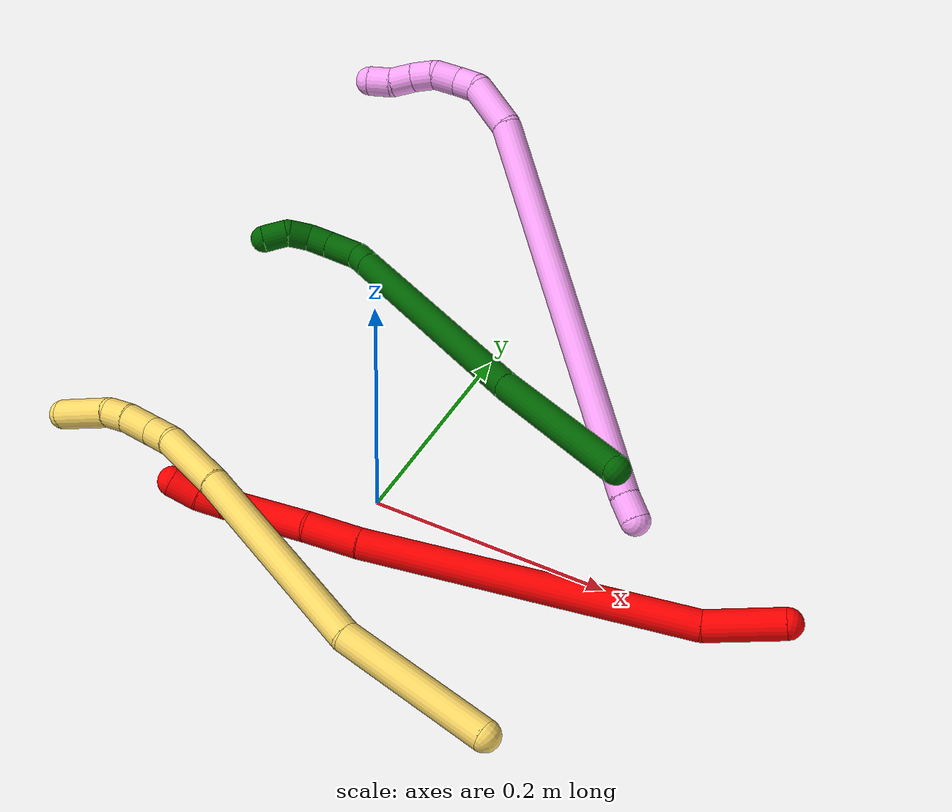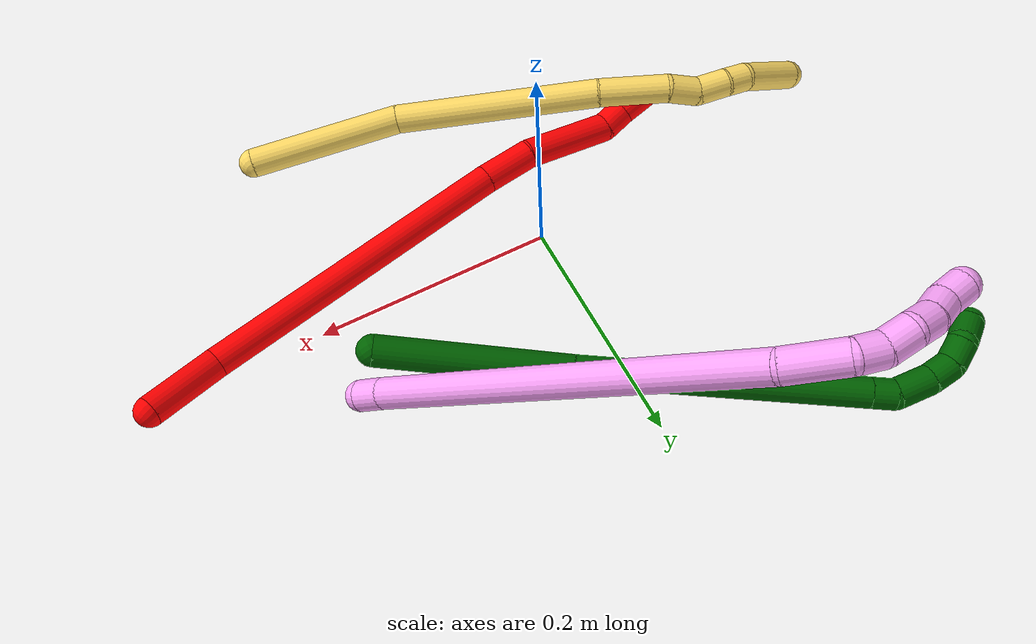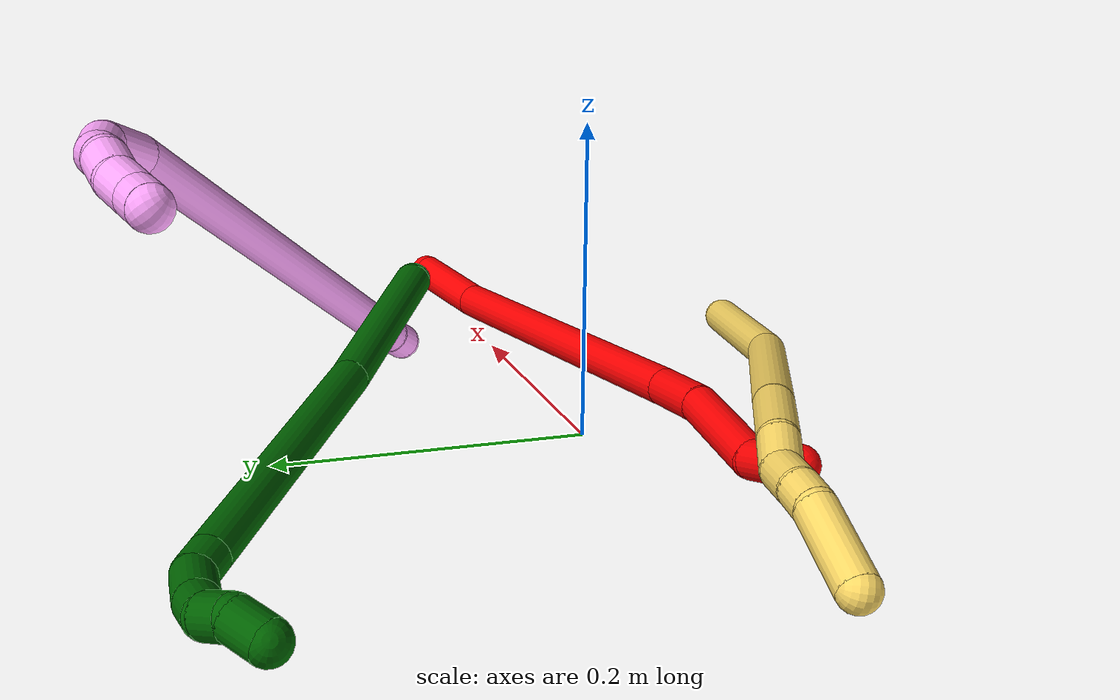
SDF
<sdf version="1.7">
 <world name="default">
  <model name="2">
   <static>0</static>
   <link name="2">
    <collision name="collision-cylinder-e_1_1_4">
     <pose>-0.010847 0.006863 -0.028928 -2.90867 -0.349832 1.97205</pose>
     <geometry><cylinder><radius>0.0125</radius><length>0.063295</length></cylinder></geometry>
     <surface>
      <friction><ode><mu>1.16</mu><mu2>1.16</mu2><slip1>0</slip1><slip2>0</slip2></ode></friction>
      <contact><ode><kp>1e+06</kp><kd>1</kd><max_vel>0</max_vel><min_depth>0.001</min_depth></ode></contact>
     </surface>
    </collision>
    <visual name="visual-cylinder-e_1_1_4">
     <pose>-0.010847 0.006863 -0.028928 -2.90867 -0.349832 1.97205</pose>
     <geometry><cylinder><radius>0.0125</radius><length>0.063295</length></cylinder></geometry>
     <material><ambient>1 0 0 1</ambient></material>
    </visual>
    <collision name="collision-cylinder-e_2_4_5">
     <pose>-0.054925 0.010246 -0.188528 3.11497 -0.248945 -2.92964</pose>
     <geometry><cylinder><radius>0.0125</radius><length>0.269755</length></cylinder></geometry>
     <surface>
      <friction><ode><mu>1.16</mu><mu2>1.16</mu2><slip1>0</slip1><slip2>0</slip2></ode></friction>
      <contact><ode><kp>1e+06</kp><kd>1</kd><max_vel>0</max_vel><min_depth>0.001</min_depth></ode></contact>
     </surface>
    </collision>
    <visual name="visual-cylinder-e_2_4_5">
     <pose>-0.054925 0.010246 -0.188528 3.11497 -0.248945 -2.92964</pose>
     <geometry><cylinder><radius>0.0125</radius><length>0.269755</length></cylinder></geometry>
     <material><ambient>1 0 0 1</ambient></material>
    </visual>
    <collision name="collision-cylinder-e_3_5_6">
     <pose>-0.094009 0.004577 -0.340396 3.03862 -0.268089 -2.41155</pose>
     <geometry><cylinder><radius>0.0125</radius><length>0.044193</length></cylinder></geometry>
     <surface>
      <friction><ode><mu>1.16</mu><mu2>1.16</mu2><slip1>0</slip1><slip2>0</slip2></ode></friction>
      <contact><ode><kp>1e+06</kp><kd>1</kd><max_vel>0</max_vel><min_depth>0.001</min_depth></ode></contact>
     </surface>
    </collision>
    <visual name="visual-cylinder-e_3_5_6">
     <pose>-0.094009 0.004577 -0.340396 3.03862 -0.268089 -2.41155</pose>
     <geometry><cylinder><radius>0.0125</radius><length>0.044193</length></cylinder></geometry>
     <material><ambient>1 0 0 1</ambient></material>
    </visual>
    <collision name="collision-cylinder-e_4_6_7">
     <pose>-0.117105 -0.002173 -0.395254 3.00696 -0.469691 -2.59228</pose>
     <geometry><cylinder><radius>0.0125</radius><length>0.076193</length></cylinder></geometry>
     <surface>
      <friction><ode><mu>1.16</mu><mu2>1.16</mu2><slip1>0</slip1><slip2>0</slip2></ode></friction>
      <contact><ode><kp>1e+06</kp><kd>1</kd><max_vel>0</max_vel><min_depth>0.001</min_depth></ode></contact>
     </surface>
    </collision>
    <visual name="visual-cylinder-e_4_6_7">
     <pose>-0.117105 -0.002173 -0.395254 3.00696 -0.469691 -2.59228</pose>
     <geometry><cylinder><radius>0.0125</radius><length>0.076193</length></cylinder></geometry>
     <material><ambient>1 0 0 1</ambient></material>
    </visual>
    <collision name="collision-cylinder-e_5_7_8">
     <pose>-0.135219 -0.007335 -0.440179 3.08821 -0.077015 -1.92954</pose>
     <geometry><cylinder><radius>0.0125</radius><length>0.022622</length></cylinder></geometry>
     <surface>
      <friction><ode><mu>1.16</mu><mu2>1.16</mu2><slip1>0</slip1><slip2>0</slip2></ode></friction>
      <contact><ode><kp>1e+06</kp><kd>1</kd><max_vel>0</max_vel><min_depth>0.001</min_depth></ode></contact>
     </surface>
    </collision>
    <visual name="visual-cylinder-e_5_7_8">
     <pose>-0.135219 -0.007335 -0.440179 3.08821 -0.077015 -1.92954</pose>
     <geometry><cylinder><radius>0.0125</radius><length>0.022622</length></cylinder></geometry>
     <material><ambient>1 0 0 1</ambient></material>
    </visual>
    <collision name="collision-cylinder-e_6_8_2">
     <pose>-0.136548 -0.010688 -0.463082 2.90951 -0.038347 -0.326091</pose>
     <geometry><cylinder><radius>0.0125</radius><length>0.023942</length></cylinder></geometry>
     <surface>
      <friction><ode><mu>1.16</mu><mu2>1.16</mu2><slip1>0</slip1><slip2>0</slip2></ode></friction>
      <contact><ode><kp>1e+06</kp><kd>1</kd><max_vel>0</max_vel><min_depth>0.001</min_depth></ode></contact>
     </surface>
    </collision>
    <visual name="visual-cylinder-e_6_8_2">
     <pose>-0.136548 -0.010688 -0.463082 2.90951 -0.038347 -0.326091</pose>
     <geometry><cylinder><radius>0.0125</radius><length>0.023942</length></cylinder></geometry>
     <material><ambient>1 0 0 1</ambient></material>
    </visual>
    <collision name="collision-sphere-2">
     <pose>-0.137007 -0.013439 -0.474724 0 -0 0</pose>
     <geometry><sphere><radius>0.0125</radius></sphere></geometry>
     <surface>
      <friction><ode><mu>1.16</mu><mu2>1.16</mu2><slip1>0</slip1><slip2>0</slip2></ode></friction>
      <contact><ode><kp>1e+06</kp><kd>1</kd><max_vel>0</max_vel><min_depth>0.001</min_depth></ode></contact>
     </surface>
    </collision>
    <visual name="visual-sphere-2">
     <pose>-0.137007 -0.013439 -0.474724 0 -0 0</pose>
     <geometry><sphere><radius>0.0125</radius></sphere></geometry>
     <material><ambient>1 0 0 1</ambient></material>
    </visual>
    <collision name="collision-sphere-4">
     <pose>-0.021694 0.013725 -0.057855 0 -0 0</pose>
     <geometry><sphere><radius>0.0125</radius></sphere></geometry>
     <surface>
      <friction><ode><mu>1.16</mu><mu2>1.16</mu2><slip1>0</slip1><slip2>0</slip2></ode></friction>
      <contact><ode><kp>1e+06</kp><kd>1</kd><max_vel>0</max_vel><min_depth>0.001</min_depth></ode></contact>
     </surface>
    </collision>
    <visual name="visual-sphere-4">
     <pose>-0.021694 0.013725 -0.057855 0 -0 0</pose>
     <geometry><sphere><radius>0.0125</radius></sphere></geometry>
     <material><ambient>1 0 0 1</ambient></material>
    </visual>
    <collision name="collision-sphere-1">
     <geometry><sphere><radius>0.0125</radius></sphere></geometry>
     <surface>
      <friction><ode><mu>1.16</mu><mu2>1.16</mu2><slip1>0</slip1><slip2>0</slip2></ode></friction>
      <contact><ode><kp>1e+06</kp><kd>1</kd><max_vel>0</max_vel><min_depth>0.001</min_depth></ode></contact>
     </surface>
    </collision>
    <visual name="visual-sphere-1">
     <geometry><sphere><radius>0.0125</radius></sphere></geometry>
     <material><ambient>1 0 0 1</ambient></material>
    </visual>
    <collision name="collision-sphere-8">
     <pose>-0.136089 -0.007937 -0.451441 0 -0 0</pose>
     <geometry><sphere><radius>0.0125</radius></sphere></geometry>
     <surface>
      <friction><ode><mu>1.16</mu><mu2>1.16</mu2><slip1>0</slip1><slip2>0</slip2></ode></friction>
      <contact><ode><kp>1e+06</kp><kd>1</kd><max_vel>0</max_vel><min_depth>0.001</min_depth></ode></contact>
     </surface>
    </collision>
    <visual name="visual-sphere-8">
     <pose>-0.136089 -0.007937 -0.451441 0 -0 0</pose>
     <geometry><sphere><radius>0.0125</radius></sphere></geometry>
     <material><ambient>1 0 0 1</ambient></material>
    </visual>
    <collision name="collision-sphere-5">
     <pose>-0.088156 0.006767 -0.319202 0 -0 0</pose>
     <geometry><sphere><radius>0.0125</radius></sphere></geometry>
     <surface>
      <friction><ode><mu>1.16</mu><mu2>1.16</mu2><slip1>0</slip1><slip2>0</slip2></ode></friction>
      <contact><ode><kp>1e+06</kp><kd>1</kd><max_vel>0</max_vel><min_depth>0.001</min_depth></ode></contact>
     </surface>
    </collision>
    <visual name="visual-sphere-5">
     <pose>-0.088156 0.006767 -0.319202 0 -0 0</pose>
     <geometry><sphere><radius>0.0125</radius></sphere></geometry>
     <material><ambient>1 0 0 1</ambient></material>
    </visual>
    <collision name="collision-sphere-6">
     <pose>-0.099863 0.002386 -0.36159 0 -0 0</pose>
     <geometry><sphere><radius>0.0125</radius></sphere></geometry>
     <surface>
      <friction><ode><mu>1.16</mu><mu2>1.16</mu2><slip1>0</slip1><slip2>0</slip2></ode></friction>
      <contact><ode><kp>1e+06</kp><kd>1</kd><max_vel>0</max_vel><min_depth>0.001</min_depth></ode></contact>
     </surface>
    </collision>
    <visual name="visual-sphere-6">
     <pose>-0.099863 0.002386 -0.36159 0 -0 0</pose>
     <geometry><sphere><radius>0.0125</radius></sphere></geometry>
     <material><ambient>1 0 0 1</ambient></material>
    </visual>
    <collision name="collision-sphere-7">
     <pose>-0.134348 -0.006733 -0.428918 0 -0 0</pose>
     <geometry><sphere><radius>0.0125</radius></sphere></geometry>
     <surface>
      <friction><ode><mu>1.16</mu><mu2>1.16</mu2><slip1>0</slip1><slip2>0</slip2></ode></friction>
      <contact><ode><kp>1e+06</kp><kd>1</kd><max_vel>0</max_vel><min_depth>0.001</min_depth></ode></contact>
     </surface>
    </collision>
    <visual name="visual-sphere-7">
     <pose>-0.134348 -0.006733 -0.428918 0 -0 0</pose>
     <geometry><sphere><radius>0.0125</radius></sphere></geometry>
     <material><ambient>1 0 0 1</ambient></material>
    </visual>
    <inertial>
     <pose>-0.069816 0.005626 -0.237782 0 -0 0</pose>
     <mass>0.5</mass>
     <inertia>
      <ixx>-0.001957</ixx>
      <ixy>0</ixy>
      <ixz>0</ixz>
      <iyy>0.001319</iyy>
      <iyz>0</iyz>
      <izz>0.000441</izz>
     </inertia>
    </inertial>
   </link>
   <pose>0.342022 0.01339 0.023901 -2.02963 -1.01857 -0.82615</pose>
  </model>
  <model name="4">
   <static>0</static>
   <link name="4">
    <collision name="collision-cylinder-e_1_1_4">
     <pose>-0.010145 0.004183 -0.001202 -1.85056 -1.16559 1.43791</pose>
     <geometry><cylinder><radius>0.0125</radius><length>0.022079</length></cylinder></geometry>
     <surface>
      <friction><ode><mu>1.16</mu><mu2>1.16</mu2><slip1>0</slip1><slip2>0</slip2></ode></friction>
      <contact><ode><kp>1e+06</kp><kd>1</kd><max_vel>0</max_vel><min_depth>0.001</min_depth></ode></contact>
     </surface>
    </collision>
    <visual name="visual-cylinder-e_1_1_4">
     <pose>-0.010145 0.004183 -0.001202 -1.85056 -1.16559 1.43791</pose>
     <geometry><cylinder><radius>0.0125</radius><length>0.022079</length></cylinder></geometry>
     <material><ambient>1 0.65098 0.996078 1</ambient></material>
    </visual>
    <collision name="collision-cylinder-e_2_4_5">
     <pose>-0.178156 0.053418 -0.017954 -1.90316 -1.27759 1.61193</pose>
     <geometry><cylinder><radius>0.0125</radius><length>0.329805</length></cylinder></geometry>
     <surface>
      <friction><ode><mu>1.16</mu><mu2>1.16</mu2><slip1>0</slip1><slip2>0</slip2></ode></friction>
      <contact><ode><kp>1e+06</kp><kd>1</kd><max_vel>0</max_vel><min_depth>0.001</min_depth></ode></contact>
     </surface>
    </collision>
    <visual name="visual-cylinder-e_2_4_5">
     <pose>-0.178156 0.053418 -0.017954 -1.90316 -1.27759 1.61193</pose>
     <geometry><cylinder><radius>0.0125</radius><length>0.329805</length></cylinder></geometry>
     <material><ambient>1 0.65098 0.996078 1</ambient></material>
    </visual>
    <collision name="collision-cylinder-e_3_5_6">
     <pose>-0.354582 0.11132 -0.036057 -1.76693 -0.956195 1.12621</pose>
     <geometry><cylinder><radius>0.0125</radius><length>0.045438</length></cylinder></geometry>
     <surface>
      <friction><ode><mu>1.16</mu><mu2>1.16</mu2><slip1>0</slip1><slip2>0</slip2></ode></friction>
      <contact><ode><kp>1e+06</kp><kd>1</kd><max_vel>0</max_vel><min_depth>0.001</min_depth></ode></contact>
     </surface>
    </collision>
    <visual name="visual-cylinder-e_3_5_6">
     <pose>-0.354582 0.11132 -0.036057 -1.76693 -0.956195 1.12621</pose>
     <geometry><cylinder><radius>0.0125</radius><length>0.045438</length></cylinder></geometry>
     <material><ambient>1 0.65098 0.996078 1</ambient></material>
    </visual>
    <collision name="collision-cylinder-e_4_6_7">
     <pose>-0.37748 0.133149 -0.039771 -1.69931 -0.446713 0.505718</pose>
     <geometry><cylinder><radius>0.0125</radius><length>0.020078</length></cylinder></geometry>
     <surface>
      <friction><ode><mu>1.16</mu><mu2>1.16</mu2><slip1>0</slip1><slip2>0</slip2></ode></friction>
      <contact><ode><kp>1e+06</kp><kd>1</kd><max_vel>0</max_vel><min_depth>0.001</min_depth></ode></contact>
     </surface>
    </collision>
    <visual name="visual-cylinder-e_4_6_7">
     <pose>-0.37748 0.133149 -0.039771 -1.69931 -0.446713 0.505718</pose>
     <geometry><cylinder><radius>0.0125</radius><length>0.020078</length></cylinder></geometry>
     <material><ambient>1 0.65098 0.996078 1</ambient></material>
    </visual>
    <collision name="collision-cylinder-e_5_7_8">
     <pose>-0.385769 0.151391 -0.045627 -2.04 -0.363567 0.581575</pose>
     <geometry><cylinder><radius>0.0125</radius><length>0.022223</length></cylinder></geometry>
     <surface>
      <friction><ode><mu>1.16</mu><mu2>1.16</mu2><slip1>0</slip1><slip2>0</slip2></ode></friction>
      <contact><ode><kp>1e+06</kp><kd>1</kd><max_vel>0</max_vel><min_depth>0.001</min_depth></ode></contact>
     </surface>
    </collision>
    <visual name="visual-cylinder-e_5_7_8">
     <pose>-0.385769 0.151391 -0.045627 -2.04 -0.363567 0.581575</pose>
     <geometry><cylinder><radius>0.0125</radius><length>0.022223</length></cylinder></geometry>
     <material><ambient>1 0.65098 0.996078 1</ambient></material>
    </visual>
    <collision name="collision-cylinder-e_6_8_9">
     <pose>-0.389985 0.170501 -0.052778 -1.81509 -0.026093 0.033395</pose>
     <geometry><cylinder><radius>0.0125</radius><length>0.020304</length></cylinder></geometry>
     <surface>
      <friction><ode><mu>1.16</mu><mu2>1.16</mu2><slip1>0</slip1><slip2>0</slip2></ode></friction>
      <contact><ode><kp>1e+06</kp><kd>1</kd><max_vel>0</max_vel><min_depth>0.001</min_depth></ode></contact>
     </surface>
    </collision>
    <visual name="visual-cylinder-e_6_8_9">
     <pose>-0.389985 0.170501 -0.052778 -1.81509 -0.026093 0.033395</pose>
     <geometry><cylinder><radius>0.0125</radius><length>0.020304</length></cylinder></geometry>
     <material><ambient>1 0.65098 0.996078 1</ambient></material>
    </visual>
    <collision name="collision-cylinder-e_7_9_10">
     <pose>-0.38877 0.189435 -0.059214 -1.98375 0.148071 -0.225984</pose>
     <geometry><cylinder><radius>0.0125</radius><length>0.020062</length></cylinder></geometry>
     <surface>
      <friction><ode><mu>1.16</mu><mu2>1.16</mu2><slip1>0</slip1><slip2>0</slip2></ode></friction>
      <contact><ode><kp>1e+06</kp><kd>1</kd><max_vel>0</max_vel><min_depth>0.001</min_depth></ode></contact>
     </surface>
    </collision>
    <visual name="visual-cylinder-e_7_9_10">
     <pose>-0.38877 0.189435 -0.059214 -1.98375 0.148071 -0.225984</pose>
     <geometry><cylinder><radius>0.0125</radius><length>0.020062</length></cylinder></geometry>
     <material><ambient>1 0.65098 0.996078 1</ambient></material>
    </visual>
    <collision name="collision-cylinder-e_8_10_2">
     <pose>-0.38887 0.207492 -0.067338 -2.00345 -0.158606 0.247208</pose>
     <geometry><cylinder><radius>0.0125</radius><length>0.020011</length></cylinder></geometry>
     <surface>
      <friction><ode><mu>1.16</mu><mu2>1.16</mu2><slip1>0</slip1><slip2>0</slip2></ode></friction>
      <contact><ode><kp>1e+06</kp><kd>1</kd><max_vel>0</max_vel><min_depth>0.001</min_depth></ode></contact>
     </surface>
    </collision>
    <visual name="visual-cylinder-e_8_10_2">
     <pose>-0.38887 0.207492 -0.067338 -2.00345 -0.158606 0.247208</pose>
     <geometry><cylinder><radius>0.0125</radius><length>0.020011</length></cylinder></geometry>
     <material><ambient>1 0.65098 0.996078 1</ambient></material>
    </visual>
    <collision name="collision-sphere-2">
     <pose>-0.390451 0.216462 -0.07148 0 -0 0</pose>
     <geometry><sphere><radius>0.0125</radius></sphere></geometry>
     <surface>
      <friction><ode><mu>1.16</mu><mu2>1.16</mu2><slip1>0</slip1><slip2>0</slip2></ode></friction>
      <contact><ode><kp>1e+06</kp><kd>1</kd><max_vel>0</max_vel><min_depth>0.001</min_depth></ode></contact>
     </surface>
    </collision>
    <visual name="visual-sphere-2">
     <pose>-0.390451 0.216462 -0.07148 0 -0 0</pose>
     <geometry><sphere><radius>0.0125</radius></sphere></geometry>
     <material><ambient>1 0.65098 0.996078 1</ambient></material>
    </visual>
    <collision name="collision-sphere-10">
     <pose>-0.38729 0.198522 -0.063195 0 -0 0</pose>
     <geometry><sphere><radius>0.0125</radius></sphere></geometry>
     <surface>
      <friction><ode><mu>1.16</mu><mu2>1.16</mu2><slip1>0</slip1><slip2>0</slip2></ode></friction>
      <contact><ode><kp>1e+06</kp><kd>1</kd><max_vel>0</max_vel><min_depth>0.001</min_depth></ode></contact>
     </surface>
    </collision>
    <visual name="visual-sphere-10">
     <pose>-0.38729 0.198522 -0.063195 0 -0 0</pose>
     <geometry><sphere><radius>0.0125</radius></sphere></geometry>
     <material><ambient>1 0.65098 0.996078 1</ambient></material>
    </visual>
    <collision name="collision-sphere-9">
     <pose>-0.39025 0.180348 -0.055232 0 -0 0</pose>
     <geometry><sphere><radius>0.0125</radius></sphere></geometry>
     <surface>
      <friction><ode><mu>1.16</mu><mu2>1.16</mu2><slip1>0</slip1><slip2>0</slip2></ode></friction>
      <contact><ode><kp>1e+06</kp><kd>1</kd><max_vel>0</max_vel><min_depth>0.001</min_depth></ode></contact>
     </surface>
    </collision>
    <visual name="visual-sphere-9">
     <pose>-0.39025 0.180348 -0.055232 0 -0 0</pose>
     <geometry><sphere><radius>0.0125</radius></sphere></geometry>
     <material><ambient>1 0.65098 0.996078 1</ambient></material>
    </visual>
    <collision name="collision-sphere-4">
     <pose>-0.020291 0.008365 -0.002403 0 -0 0</pose>
     <geometry><sphere><radius>0.0125</radius></sphere></geometry>
     <surface>
      <friction><ode><mu>1.16</mu><mu2>1.16</mu2><slip1>0</slip1><slip2>0</slip2></ode></friction>
      <contact><ode><kp>1e+06</kp><kd>1</kd><max_vel>0</max_vel><min_depth>0.001</min_depth></ode></contact>
     </surface>
    </collision>
    <visual name="visual-sphere-4">
     <pose>-0.020291 0.008365 -0.002403 0 -0 0</pose>
     <geometry><sphere><radius>0.0125</radius></sphere></geometry>
     <material><ambient>1 0.65098 0.996078 1</ambient></material>
    </visual>
    <collision name="collision-sphere-1">
     <geometry><sphere><radius>0.0125</radius></sphere></geometry>
     <surface>
      <friction><ode><mu>1.16</mu><mu2>1.16</mu2><slip1>0</slip1><slip2>0</slip2></ode></friction>
      <contact><ode><kp>1e+06</kp><kd>1</kd><max_vel>0</max_vel><min_depth>0.001</min_depth></ode></contact>
     </surface>
    </collision>
    <visual name="visual-sphere-1">
     <geometry><sphere><radius>0.0125</radius></sphere></geometry>
     <material><ambient>1 0.65098 0.996078 1</ambient></material>
    </visual>
    <collision name="collision-sphere-8">
     <pose>-0.38972 0.160654 -0.050323 0 -0 0</pose>
     <geometry><sphere><radius>0.0125</radius></sphere></geometry>
     <surface>
      <friction><ode><mu>1.16</mu><mu2>1.16</mu2><slip1>0</slip1><slip2>0</slip2></ode></friction>
      <contact><ode><kp>1e+06</kp><kd>1</kd><max_vel>0</max_vel><min_depth>0.001</min_depth></ode></contact>
     </surface>
    </collision>
    <visual name="visual-sphere-8">
     <pose>-0.38972 0.160654 -0.050323 0 -0 0</pose>
     <geometry><sphere><radius>0.0125</radius></sphere></geometry>
     <material><ambient>1 0.65098 0.996078 1</ambient></material>
    </visual>
    <collision name="collision-sphere-5">
     <pose>-0.33602 0.098471 -0.033504 0 -0 0</pose>
     <geometry><sphere><radius>0.0125</radius></sphere></geometry>
     <surface>
      <friction><ode><mu>1.16</mu><mu2>1.16</mu2><slip1>0</slip1><slip2>0</slip2></ode></friction>
      <contact><ode><kp>1e+06</kp><kd>1</kd><max_vel>0</max_vel><min_depth>0.001</min_depth></ode></contact>
     </surface>
    </collision>
    <visual name="visual-sphere-5">
     <pose>-0.33602 0.098471 -0.033504 0 -0 0</pose>
     <geometry><sphere><radius>0.0125</radius></sphere></geometry>
     <material><ambient>1 0.65098 0.996078 1</ambient></material>
    </visual>
    <collision name="collision-sphere-6">
     <pose>-0.373143 0.12417 -0.03861 0 -0 0</pose>
     <geometry><sphere><radius>0.0125</radius></sphere></geometry>
     <surface>
      <friction><ode><mu>1.16</mu><mu2>1.16</mu2><slip1>0</slip1><slip2>0</slip2></ode></friction>
      <contact><ode><kp>1e+06</kp><kd>1</kd><max_vel>0</max_vel><min_depth>0.001</min_depth></ode></contact>
     </surface>
    </collision>
    <visual name="visual-sphere-6">
     <pose>-0.373143 0.12417 -0.03861 0 -0 0</pose>
     <geometry><sphere><radius>0.0125</radius></sphere></geometry>
     <material><ambient>1 0.65098 0.996078 1</ambient></material>
    </visual>
    <collision name="collision-sphere-7">
     <pose>-0.381817 0.142128 -0.040931 0 -0 0</pose>
     <geometry><sphere><radius>0.0125</radius></sphere></geometry>
     <surface>
      <friction><ode><mu>1.16</mu><mu2>1.16</mu2><slip1>0</slip1><slip2>0</slip2></ode></friction>
      <contact><ode><kp>1e+06</kp><kd>1</kd><max_vel>0</max_vel><min_depth>0.001</min_depth></ode></contact>
     </surface>
    </collision>
    <visual name="visual-sphere-7">
     <pose>-0.381817 0.142128 -0.040931 0 -0 0</pose>
     <geometry><sphere><radius>0.0125</radius></sphere></geometry>
     <material><ambient>1 0.65098 0.996078 1</ambient></material>
    </visual>
    <inertial>
     <pose>-0.229487 0.08044 -0.026011 0 -0 0</pose>
     <mass>0.5</mass>
     <inertia>
      <ixx>0.000817</ixx>
      <ixy>0</ixy>
      <ixz>0</ixz>
      <iyy>0.003652</iyy>
      <iyz>0</iyz>
      <izz>0.002046</izz>
     </inertia>
    </inertial>
   </link>
   <pose>0.194706 0.070687 0.011495 -2.4497 0.696982 -1.06651</pose>
  </model>
  <model name="5">
   <static>0</static>
   <link name="5">
    <collision name="collision-cylinder-e_1_1_4">
     <pose>-0.028328 0.05877 0.001489 -1.54546 -0.449031 0.438156</pose>
     <geometry><cylinder><radius>0.0125</radius><length>0.130516</length></cylinder></geometry>
     <surface>
      <friction><ode><mu>1.16</mu><mu2>1.16</mu2><slip1>0</slip1><slip2>0</slip2></ode></friction>
      <contact><ode><kp>1e+06</kp><kd>1</kd><max_vel>0</max_vel><min_depth>0.001</min_depth></ode></contact>
     </surface>
    </collision>
    <visual name="visual-cylinder-e_1_1_4">
     <pose>-0.028328 0.05877 0.001489 -1.54546 -0.449031 0.438156</pose>
     <geometry><cylinder><radius>0.0125</radius><length>0.130516</length></cylinder></geometry>
     <material><ambient>1 0.858824 0.4 1</ambient></material>
    </visual>
    <collision name="collision-cylinder-e_2_4_5">
     <pose>-0.092933 0.195656 0.026028 -1.28387 -0.41903 0.315277</pose>
     <geometry><cylinder><radius>0.0125</radius><length>0.17832</length></cylinder></geometry>
     <surface>
      <friction><ode><mu>1.16</mu><mu2>1.16</mu2><slip1>0</slip1><slip2>0</slip2></ode></friction>
      <contact><ode><kp>1e+06</kp><kd>1</kd><max_vel>0</max_vel><min_depth>0.001</min_depth></ode></contact>
     </surface>
    </collision>
    <visual name="visual-cylinder-e_2_4_5">
     <pose>-0.092933 0.195656 0.026028 -1.28387 -0.41903 0.315277</pose>
     <geometry><cylinder><radius>0.0125</radius><length>0.17832</length></cylinder></geometry>
     <material><ambient>1 0.858824 0.4 1</ambient></material>
    </visual>
    <collision name="collision-cylinder-e_3_5_6">
     <pose>-0.13838 0.301938 0.055644 -1.34175 -0.307049 0.244407</pose>
     <geometry><cylinder><radius>0.0125</radius><length>0.060677</length></cylinder></geometry>
     <surface>
      <friction><ode><mu>1.16</mu><mu2>1.16</mu2><slip1>0</slip1><slip2>0</slip2></ode></friction>
      <contact><ode><kp>1e+06</kp><kd>1</kd><max_vel>0</max_vel><min_depth>0.001</min_depth></ode></contact>
     </surface>
    </collision>
    <visual name="visual-cylinder-e_3_5_6">
     <pose>-0.13838 0.301938 0.055644 -1.34175 -0.307049 0.244407</pose>
     <geometry><cylinder><radius>0.0125</radius><length>0.060677</length></cylinder></geometry>
     <material><ambient>1 0.858824 0.4 1</ambient></material>
    </visual>
    <collision name="collision-cylinder-e_4_6_7">
     <pose>-0.148053 0.343701 0.063915 -1.44608 -0.036727 0.032411</pose>
     <geometry><cylinder><radius>0.0125</radius><length>0.027429</length></cylinder></geometry>
     <surface>
      <friction><ode><mu>1.16</mu><mu2>1.16</mu2><slip1>0</slip1><slip2>0</slip2></ode></friction>
      <contact><ode><kp>1e+06</kp><kd>1</kd><max_vel>0</max_vel><min_depth>0.001</min_depth></ode></contact>
     </surface>
    </collision>
    <visual name="visual-cylinder-e_4_6_7">
     <pose>-0.148053 0.343701 0.063915 -1.44608 -0.036727 0.032411</pose>
     <geometry><cylinder><radius>0.0125</radius><length>0.027429</length></cylinder></geometry>
     <material><ambient>1 0.858824 0.4 1</ambient></material>
    </visual>
    <collision name="collision-cylinder-e_5_7_8">
     <pose>-0.153764 0.370174 0.064864 -1.62944 -0.383792 0.40637</pose>
     <geometry><cylinder><radius>0.0125</radius><length>0.027816</length></cylinder></geometry>
     <surface>
      <friction><ode><mu>1.16</mu><mu2>1.16</mu2><slip1>0</slip1><slip2>0</slip2></ode></friction>
      <contact><ode><kp>1e+06</kp><kd>1</kd><max_vel>0</max_vel><min_depth>0.001</min_depth></ode></contact>
     </surface>
    </collision>
    <visual name="visual-cylinder-e_5_7_8">
     <pose>-0.153764 0.370174 0.064864 -1.62944 -0.383792 0.40637</pose>
     <geometry><cylinder><radius>0.0125</radius><length>0.027816</length></cylinder></geometry>
     <material><ambient>1 0.858824 0.4 1</ambient></material>
    </visual>
    <collision name="collision-cylinder-e_6_8_9">
     <pose>-0.161413 0.39265 0.062464 -1.74042 -0.245539 0.290578</pose>
     <geometry><cylinder><radius>0.0125</radius><length>0.020088</length></cylinder></geometry>
     <surface>
      <friction><ode><mu>1.16</mu><mu2>1.16</mu2><slip1>0</slip1><slip2>0</slip2></ode></friction>
      <contact><ode><kp>1e+06</kp><kd>1</kd><max_vel>0</max_vel><min_depth>0.001</min_depth></ode></contact>
     </surface>
    </collision>
    <visual name="visual-cylinder-e_6_8_9">
     <pose>-0.161413 0.39265 0.062464 -1.74042 -0.245539 0.290578</pose>
     <geometry><cylinder><radius>0.0125</radius><length>0.020088</length></cylinder></geometry>
     <material><ambient>1 0.858824 0.4 1</ambient></material>
    </visual>
    <collision name="collision-cylinder-e_7_9_2">
     <pose>-0.162413 0.429027 0.054372 -1.80711 0.052328 -0.066416</pose>
     <geometry><cylinder><radius>0.0125</radius><length>0.055154</length></cylinder></geometry>
     <surface>
      <friction><ode><mu>1.16</mu><mu2>1.16</mu2><slip1>0</slip1><slip2>0</slip2></ode></friction>
      <contact><ode><kp>1e+06</kp><kd>1</kd><max_vel>0</max_vel><min_depth>0.001</min_depth></ode></contact>
     </surface>
    </collision>
    <visual name="visual-cylinder-e_7_9_2">
     <pose>-0.162413 0.429027 0.054372 -1.80711 0.052328 -0.066416</pose>
     <geometry><cylinder><radius>0.0125</radius><length>0.055154</length></cylinder></geometry>
     <material><ambient>1 0.858824 0.4 1</ambient></material>
    </visual>
    <collision name="collision-sphere-2">
     <pose>-0.16097 0.455801 0.047924 0 -0 0</pose>
     <geometry><sphere><radius>0.0125</radius></sphere></geometry>
     <surface>
      <friction><ode><mu>1.16</mu><mu2>1.16</mu2><slip1>0</slip1><slip2>0</slip2></ode></friction>
      <contact><ode><kp>1e+06</kp><kd>1</kd><max_vel>0</max_vel><min_depth>0.001</min_depth></ode></contact>
     </surface>
    </collision>
    <visual name="visual-sphere-2">
     <pose>-0.16097 0.455801 0.047924 0 -0 0</pose>
     <geometry><sphere><radius>0.0125</radius></sphere></geometry>
     <material><ambient>1 0.858824 0.4 1</ambient></material>
    </visual>
    <collision name="collision-sphere-9">
     <pose>-0.163855 0.402253 0.060819 0 -0 0</pose>
     <geometry><sphere><radius>0.0125</radius></sphere></geometry>
     <surface>
      <friction><ode><mu>1.16</mu><mu2>1.16</mu2><slip1>0</slip1><slip2>0</slip2></ode></friction>
      <contact><ode><kp>1e+06</kp><kd>1</kd><max_vel>0</max_vel><min_depth>0.001</min_depth></ode></contact>
     </surface>
    </collision>
    <visual name="visual-sphere-9">
     <pose>-0.163855 0.402253 0.060819 0 -0 0</pose>
     <geometry><sphere><radius>0.0125</radius></sphere></geometry>
     <material><ambient>1 0.858824 0.4 1</ambient></material>
    </visual>
    <collision name="collision-sphere-4">
     <pose>-0.056656 0.11754 0.002979 0 -0 0</pose>
     <geometry><sphere><radius>0.0125</radius></sphere></geometry>
     <surface>
      <friction><ode><mu>1.16</mu><mu2>1.16</mu2><slip1>0</slip1><slip2>0</slip2></ode></friction>
      <contact><ode><kp>1e+06</kp><kd>1</kd><max_vel>0</max_vel><min_depth>0.001</min_depth></ode></contact>
     </surface>
    </collision>
    <visual name="visual-sphere-4">
     <pose>-0.056656 0.11754 0.002979 0 -0 0</pose>
     <geometry><sphere><radius>0.0125</radius></sphere></geometry>
     <material><ambient>1 0.858824 0.4 1</ambient></material>
    </visual>
    <collision name="collision-sphere-1">
     <geometry><sphere><radius>0.0125</radius></sphere></geometry>
     <surface>
      <friction><ode><mu>1.16</mu><mu2>1.16</mu2><slip1>0</slip1><slip2>0</slip2></ode></friction>
      <contact><ode><kp>1e+06</kp><kd>1</kd><max_vel>0</max_vel><min_depth>0.001</min_depth></ode></contact>
     </surface>
    </collision>
    <visual name="visual-sphere-1">
     <geometry><sphere><radius>0.0125</radius></sphere></geometry>
     <material><ambient>1 0.858824 0.4 1</ambient></material>
    </visual>
    <collision name="collision-sphere-8">
     <pose>-0.158972 0.383048 0.064108 0 -0 0</pose>
     <geometry><sphere><radius>0.0125</radius></sphere></geometry>
     <surface>
      <friction><ode><mu>1.16</mu><mu2>1.16</mu2><slip1>0</slip1><slip2>0</slip2></ode></friction>
      <contact><ode><kp>1e+06</kp><kd>1</kd><max_vel>0</max_vel><min_depth>0.001</min_depth></ode></contact>
     </surface>
    </collision>
    <visual name="visual-sphere-8">
     <pose>-0.158972 0.383048 0.064108 0 -0 0</pose>
     <geometry><sphere><radius>0.0125</radius></sphere></geometry>
     <material><ambient>1 0.858824 0.4 1</ambient></material>
    </visual>
    <collision name="collision-sphere-5">
     <pose>-0.12921 0.273773 0.049078 0 -0 0</pose>
     <geometry><sphere><radius>0.0125</radius></sphere></geometry>
     <surface>
      <friction><ode><mu>1.16</mu><mu2>1.16</mu2><slip1>0</slip1><slip2>0</slip2></ode></friction>
      <contact><ode><kp>1e+06</kp><kd>1</kd><max_vel>0</max_vel><min_depth>0.001</min_depth></ode></contact>
     </surface>
    </collision>
    <visual name="visual-sphere-5">
     <pose>-0.12921 0.273773 0.049078 0 -0 0</pose>
     <geometry><sphere><radius>0.0125</radius></sphere></geometry>
     <material><ambient>1 0.858824 0.4 1</ambient></material>
    </visual>
    <collision name="collision-sphere-6">
     <pose>-0.147549 0.330102 0.06221 0 -0 0</pose>
     <geometry><sphere><radius>0.0125</radius></sphere></geometry>
     <surface>
      <friction><ode><mu>1.16</mu><mu2>1.16</mu2><slip1>0</slip1><slip2>0</slip2></ode></friction>
      <contact><ode><kp>1e+06</kp><kd>1</kd><max_vel>0</max_vel><min_depth>0.001</min_depth></ode></contact>
     </surface>
    </collision>
    <visual name="visual-sphere-6">
     <pose>-0.147549 0.330102 0.06221 0 -0 0</pose>
     <geometry><sphere><radius>0.0125</radius></sphere></geometry>
     <material><ambient>1 0.858824 0.4 1</ambient></material>
    </visual>
    <collision name="collision-sphere-7">
     <pose>-0.148557 0.3573 0.06562 0 -0 0</pose>
     <geometry><sphere><radius>0.0125</radius></sphere></geometry>
     <surface>
      <friction><ode><mu>1.16</mu><mu2>1.16</mu2><slip1>0</slip1><slip2>0</slip2></ode></friction>
      <contact><ode><kp>1e+06</kp><kd>1</kd><max_vel>0</max_vel><min_depth>0.001</min_depth></ode></contact>
     </surface>
    </collision>
    <visual name="visual-sphere-7">
     <pose>-0.148557 0.3573 0.06562 0 -0 0</pose>
     <geometry><sphere><radius>0.0125</radius></sphere></geometry>
     <material><ambient>1 0.858824 0.4 1</ambient></material>
    </visual>
    <inertial>
     <pose>-0.098408 0.22431 0.032046 0 -0 0</pose>
     <mass>0.5</mass>
     <inertia>
      <ixx>0.000815</ixx>
      <ixy>0</ixy>
      <ixz>0</ixz>
      <iyy>0.000479</iyy>
      <iyz>0</iyz>
      <izz>-0.000345</izz>
     </inertia>
    </inertial>
   </link>
   <pose>0.188902 -0.180491 0.012465 -1.0627 1.16389 0.290238</pose>
  </model>
  <model name="6">
   <static>0</static>
   <link name="6">
    <collision name="collision-cylinder-e_1_1_4">
     <pose>-0.048066 0.025975 -0.053117 -2.68677 -0.682573 1.9867</pose>
     <geometry><cylinder><radius>0.0125</radius><length>0.1524</length></cylinder></geometry>
     <surface>
      <friction><ode><mu>1.16</mu><mu2>1.16</mu2><slip1>0</slip1><slip2>0</slip2></ode></friction>
      <contact><ode><kp>1e+06</kp><kd>1</kd><max_vel>0</max_vel><min_depth>0.001</min_depth></ode></contact>
     </surface>
    </collision>
    <visual name="visual-cylinder-e_1_1_4">
     <pose>-0.048066 0.025975 -0.053117 -2.68677 -0.682573 1.9867</pose>
     <geometry><cylinder><radius>0.0125</radius><length>0.1524</length></cylinder></geometry>
     <material><ambient>0 0.392157 0.003922 1</ambient></material>
    </visual>
    <collision name="collision-cylinder-e_2_4_5">
     <pose>-0.167367 0.084353 -0.190808 -2.77571 -0.666467 2.15988</pose>
     <geometry><cylinder><radius>0.0125</radius><length>0.230454</length></cylinder></geometry>
     <surface>
      <friction><ode><mu>1.16</mu><mu2>1.16</mu2><slip1>0</slip1><slip2>0</slip2></ode></friction>
      <contact><ode><kp>1e+06</kp><kd>1</kd><max_vel>0</max_vel><min_depth>0.001</min_depth></ode></contact>
     </surface>
    </collision>
    <visual name="visual-cylinder-e_2_4_5">
     <pose>-0.167367 0.084353 -0.190808 -2.77571 -0.666467 2.15988</pose>
     <geometry><cylinder><radius>0.0125</radius><length>0.230454</length></cylinder></geometry>
     <material><ambient>0 0.392157 0.003922 1</ambient></material>
    </visual>
    <collision name="collision-cylinder-e_3_5_6">
     <pose>-0.244787 0.119568 -0.28273 -2.77605 -0.666248 2.16038</pose>
     <geometry><cylinder><radius>0.0125</radius><length>0.020015</length></cylinder></geometry>
     <surface>
      <friction><ode><mu>1.16</mu><mu2>1.16</mu2><slip1>0</slip1><slip2>0</slip2></ode></friction>
      <contact><ode><kp>1e+06</kp><kd>1</kd><max_vel>0</max_vel><min_depth>0.001</min_depth></ode></contact>
     </surface>
    </collision>
    <visual name="visual-cylinder-e_3_5_6">
     <pose>-0.244787 0.119568 -0.28273 -2.77605 -0.666248 2.16038</pose>
     <geometry><cylinder><radius>0.0125</radius><length>0.020015</length></cylinder></geometry>
     <material><ambient>0 0.392157 0.003922 1</ambient></material>
    </visual>
    <collision name="collision-cylinder-e_4_6_7">
     <pose>-0.254185 0.129155 -0.304095 -2.6914 -0.203512 0.838943</pose>
     <geometry><cylinder><radius>0.0125</radius><length>0.031794</length></cylinder></geometry>
     <surface>
      <friction><ode><mu>1.16</mu><mu2>1.16</mu2><slip1>0</slip1><slip2>0</slip2></ode></friction>
      <contact><ode><kp>1e+06</kp><kd>1</kd><max_vel>0</max_vel><min_depth>0.001</min_depth></ode></contact>
     </surface>
    </collision>
    <visual name="visual-cylinder-e_4_6_7">
     <pose>-0.254185 0.129155 -0.304095 -2.6914 -0.203512 0.838943</pose>
     <geometry><cylinder><radius>0.0125</radius><length>0.031794</length></cylinder></geometry>
     <material><ambient>0 0.392157 0.003922 1</ambient></material>
    </visual>
    <collision name="collision-cylinder-e_5_7_8">
     <pose>-0.25759 0.140054 -0.328057 -2.7484 -0.017865 0.089642</pose>
     <geometry><cylinder><radius>0.0125</radius><length>0.021534</length></cylinder></geometry>
     <surface>
      <friction><ode><mu>1.16</mu><mu2>1.16</mu2><slip1>0</slip1><slip2>0</slip2></ode></friction>
      <contact><ode><kp>1e+06</kp><kd>1</kd><max_vel>0</max_vel><min_depth>0.001</min_depth></ode></contact>
     </surface>
    </collision>
    <visual name="visual-cylinder-e_5_7_8">
     <pose>-0.25759 0.140054 -0.328057 -2.7484 -0.017865 0.089642</pose>
     <geometry><cylinder><radius>0.0125</radius><length>0.021534</length></cylinder></geometry>
     <material><ambient>0 0.392157 0.003922 1</ambient></material>
    </visual>
    <collision name="collision-cylinder-e_6_8_9">
     <pose>-0.253217 0.147665 -0.346723 -2.76136 0.452362 -1.74866</pose>
     <geometry><cylinder><radius>0.0125</radius><length>0.020889</length></cylinder></geometry>
     <surface>
      <friction><ode><mu>1.16</mu><mu2>1.16</mu2><slip1>0</slip1><slip2>0</slip2></ode></friction>
      <contact><ode><kp>1e+06</kp><kd>1</kd><max_vel>0</max_vel><min_depth>0.001</min_depth></ode></contact>
     </surface>
    </collision>
    <visual name="visual-cylinder-e_6_8_9">
     <pose>-0.253217 0.147665 -0.346723 -2.76136 0.452362 -1.74866</pose>
     <geometry><cylinder><radius>0.0125</radius><length>0.020889</length></cylinder></geometry>
     <material><ambient>0 0.392157 0.003922 1</ambient></material>
    </visual>
    <collision name="collision-cylinder-e_7_9_2">
     <pose>-0.244733 0.159753 -0.361922 -2.21615 0.349075 -0.679543</pose>
     <geometry><cylinder><radius>0.0125</radius><length>0.022915</length></cylinder></geometry>
     <surface>
      <friction><ode><mu>1.16</mu><mu2>1.16</mu2><slip1>0</slip1><slip2>0</slip2></ode></friction>
      <contact><ode><kp>1e+06</kp><kd>1</kd><max_vel>0</max_vel><min_depth>0.001</min_depth></ode></contact>
     </surface>
    </collision>
    <visual name="visual-cylinder-e_7_9_2">
     <pose>-0.244733 0.159753 -0.361922 -2.21615 0.349075 -0.679543</pose>
     <geometry><cylinder><radius>0.0125</radius><length>0.022915</length></cylinder></geometry>
     <material><ambient>0 0.392157 0.003922 1</ambient></material>
    </visual>
    <collision name="collision-sphere-2">
     <pose>-0.240814 0.168354 -0.368398 0 -0 0</pose>
     <geometry><sphere><radius>0.0125</radius></sphere></geometry>
     <surface>
      <friction><ode><mu>1.16</mu><mu2>1.16</mu2><slip1>0</slip1><slip2>0</slip2></ode></friction>
      <contact><ode><kp>1e+06</kp><kd>1</kd><max_vel>0</max_vel><min_depth>0.001</min_depth></ode></contact>
     </surface>
    </collision>
    <visual name="visual-sphere-2">
     <pose>-0.240814 0.168354 -0.368398 0 -0 0</pose>
     <geometry><sphere><radius>0.0125</radius></sphere></geometry>
     <material><ambient>0 0.392157 0.003922 1</ambient></material>
    </visual>
    <collision name="collision-sphere-9">
     <pose>-0.248652 0.151151 -0.355446 0 -0 0</pose>
     <geometry><sphere><radius>0.0125</radius></sphere></geometry>
     <surface>
      <friction><ode><mu>1.16</mu><mu2>1.16</mu2><slip1>0</slip1><slip2>0</slip2></ode></friction>
      <contact><ode><kp>1e+06</kp><kd>1</kd><max_vel>0</max_vel><min_depth>0.001</min_depth></ode></contact>
     </surface>
    </collision>
    <visual name="visual-sphere-9">
     <pose>-0.248652 0.151151 -0.355446 0 -0 0</pose>
     <geometry><sphere><radius>0.0125</radius></sphere></geometry>
     <material><ambient>0 0.392157 0.003922 1</ambient></material>
    </visual>
    <collision name="collision-sphere-4">
     <pose>-0.096133 0.051949 -0.106233 0 -0 0</pose>
     <geometry><sphere><radius>0.0125</radius></sphere></geometry>
     <surface>
      <friction><ode><mu>1.16</mu><mu2>1.16</mu2><slip1>0</slip1><slip2>0</slip2></ode></friction>
      <contact><ode><kp>1e+06</kp><kd>1</kd><max_vel>0</max_vel><min_depth>0.001</min_depth></ode></contact>
     </surface>
    </collision>
    <visual name="visual-sphere-4">
     <pose>-0.096133 0.051949 -0.106233 0 -0 0</pose>
     <geometry><sphere><radius>0.0125</radius></sphere></geometry>
     <material><ambient>0 0.392157 0.003922 1</ambient></material>
    </visual>
    <collision name="collision-sphere-1">
     <geometry><sphere><radius>0.0125</radius></sphere></geometry>
     <surface>
      <friction><ode><mu>1.16</mu><mu2>1.16</mu2><slip1>0</slip1><slip2>0</slip2></ode></friction>
      <contact><ode><kp>1e+06</kp><kd>1</kd><max_vel>0</max_vel><min_depth>0.001</min_depth></ode></contact>
     </surface>
    </collision>
    <visual name="visual-sphere-1">
     <geometry><sphere><radius>0.0125</radius></sphere></geometry>
     <material><ambient>0 0.392157 0.003922 1</ambient></material>
    </visual>
    <collision name="collision-sphere-8">
     <pose>-0.257782 0.144179 -0.338 0 -0 0</pose>
     <geometry><sphere><radius>0.0125</radius></sphere></geometry>
     <surface>
      <friction><ode><mu>1.16</mu><mu2>1.16</mu2><slip1>0</slip1><slip2>0</slip2></ode></friction>
      <contact><ode><kp>1e+06</kp><kd>1</kd><max_vel>0</max_vel><min_depth>0.001</min_depth></ode></contact>
     </surface>
    </collision>
    <visual name="visual-sphere-8">
     <pose>-0.257782 0.144179 -0.338 0 -0 0</pose>
     <geometry><sphere><radius>0.0125</radius></sphere></geometry>
     <material><ambient>0 0.392157 0.003922 1</ambient></material>
    </visual>
    <collision name="collision-sphere-5">
     <pose>-0.238602 0.116756 -0.275383 0 -0 0</pose>
     <geometry><sphere><radius>0.0125</radius></sphere></geometry>
     <surface>
      <friction><ode><mu>1.16</mu><mu2>1.16</mu2><slip1>0</slip1><slip2>0</slip2></ode></friction>
      <contact><ode><kp>1e+06</kp><kd>1</kd><max_vel>0</max_vel><min_depth>0.001</min_depth></ode></contact>
     </surface>
    </collision>
    <visual name="visual-sphere-5">
     <pose>-0.238602 0.116756 -0.275383 0 -0 0</pose>
     <geometry><sphere><radius>0.0125</radius></sphere></geometry>
     <material><ambient>0 0.392157 0.003922 1</ambient></material>
    </visual>
    <collision name="collision-sphere-6">
     <pose>-0.250972 0.12238 -0.290077 0 -0 0</pose>
     <geometry><sphere><radius>0.0125</radius></sphere></geometry>
     <surface>
      <friction><ode><mu>1.16</mu><mu2>1.16</mu2><slip1>0</slip1><slip2>0</slip2></ode></friction>
      <contact><ode><kp>1e+06</kp><kd>1</kd><max_vel>0</max_vel><min_depth>0.001</min_depth></ode></contact>
     </surface>
    </collision>
    <visual name="visual-sphere-6">
     <pose>-0.250972 0.12238 -0.290077 0 -0 0</pose>
     <geometry><sphere><radius>0.0125</radius></sphere></geometry>
     <material><ambient>0 0.392157 0.003922 1</ambient></material>
    </visual>
    <collision name="collision-sphere-7">
     <pose>-0.257398 0.135929 -0.318113 0 -0 0</pose>
     <geometry><sphere><radius>0.0125</radius></sphere></geometry>
     <surface>
      <friction><ode><mu>1.16</mu><mu2>1.16</mu2><slip1>0</slip1><slip2>0</slip2></ode></friction>
      <contact><ode><kp>1e+06</kp><kd>1</kd><max_vel>0</max_vel><min_depth>0.001</min_depth></ode></contact>
     </surface>
    </collision>
    <visual name="visual-sphere-7">
     <pose>-0.257398 0.135929 -0.318113 0 -0 0</pose>
     <geometry><sphere><radius>0.0125</radius></sphere></geometry>
     <material><ambient>0 0.392157 0.003922 1</ambient></material>
    </visual>
    <inertial>
     <pose>-0.150642 0.079317 -0.17999 0 -0 0</pose>
     <mass>0.5</mass>
     <inertia>
      <ixx>0.00033</ixx>
      <ixy>0</ixy>
      <ixz>0</ixz>
      <iyy>0.001806</iyy>
      <iyz>0</iyz>
      <izz>0.000401</izz>
     </inertia>
    </inertial>
   </link>
   <pose>0.17578 0.066397 0.0621 -2.09951 -0.357167 -1.41995</pose>
  </model>
 </world>
</sdf>
